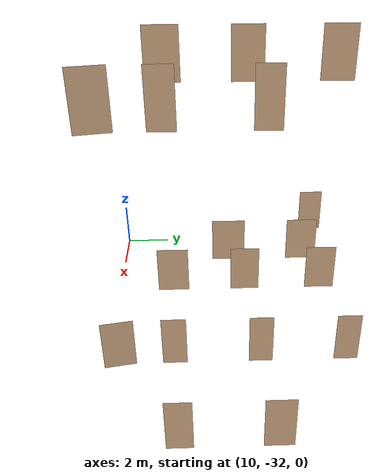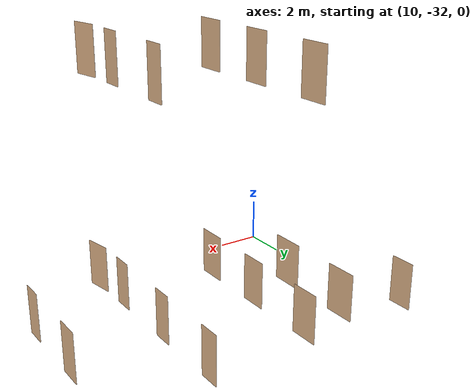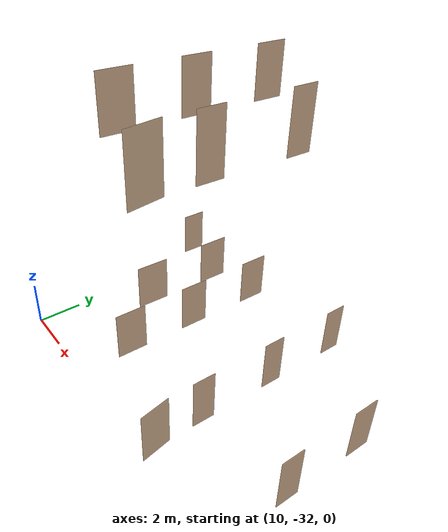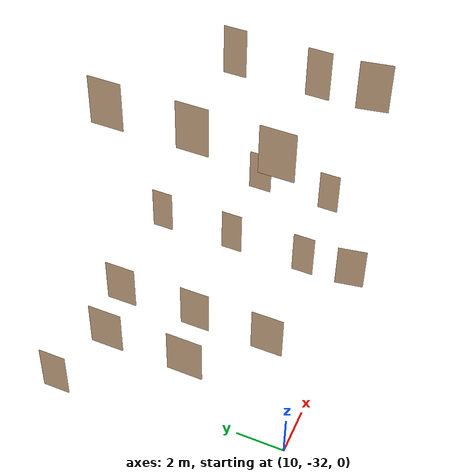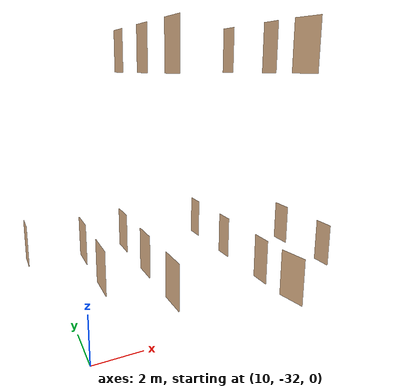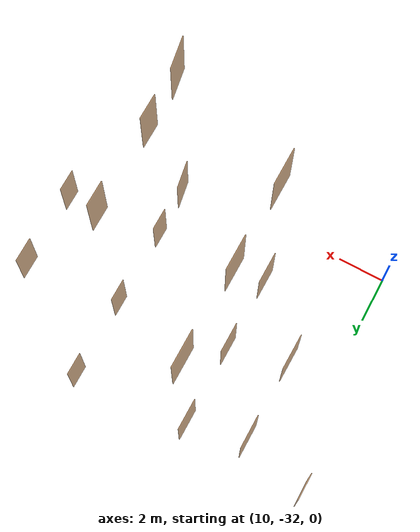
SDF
<sdf version="1.7">
 <world name="sim_world">
  <model name="L1_left_consult_rm_9_outer">
   <pose>14.307718933887172 -29.486527441252285 0.0 0 0 -1.5707963267948966</pose>
   <static>true</static>
   <link name="right">
    <pose>0 0 1.11 0 0 0</pose>
    <visual name="right_visual">
     <geometry><box><size>1.401791854159457 0.03 2.2</size></box></geometry>
     <material>
      <ambient>0.5 0.25 0 0.6</ambient>
      <diffuse>0.5 0.25 0 0.6</diffuse>
      <pbr><metal><metalness>0.0</metalness></metal></pbr>
     </material>
    </visual>
    <collision name="right_collision">
     <geometry><box><size>1.401791854159457 0.03 2.2</size></box></geometry>
     <surface><contact><collide_bitmask>0x02</collide_bitmask></contact></surface>
    </collision>
    <inertial>
     <mass>50.0</mass>
     <inertia><ixx>20.17041666666667</ixx><iyy>28.354251676615874</iyy><izz>8.191335009949201</izz></inertia>
    </inertial>
   </link>
   <joint name="right_joint" type="prismatic">
    <parent>world</parent>
    <child>right</child>
    <axis>
     <xyz>1 0 0</xyz>
     <limit><lower>0.0</lower><upper>1.411791854159457</upper><effort>500.0</effort></limit>
    </axis>
   </joint>
  </model>
  <model name="L1_left_consult_rm_10_outer">
   <pose>14.307718933887172 -26.181039190800377 0.0 0 0 -1.5707963267948966</pose>
   <static>true</static>
   <link name="right">
    <pose>0 0 1.11 0 0 0</pose>
    <visual name="right_visual">
     <geometry><box><size>1.2997034729433474 0.03 2.2</size></box></geometry>
     <material>
      <ambient>0.5 0.25 0 0.6</ambient>
      <diffuse>0.5 0.25 0 0.6</diffuse>
      <pbr><metal><metalness>0.0</metalness></metal></pbr>
     </material>
    </visual>
    <collision name="right_collision">
     <geometry><box><size>1.2997034729433474 0.03 2.2</size></box></geometry>
     <surface><contact><collide_bitmask>0x02</collide_bitmask></contact></surface>
    </collision>
    <inertial>
     <mass>50.0</mass>
     <inertia><ixx>20.17041666666667</ixx><iyy>27.205121323254165</iyy><izz>7.0422046565874945</izz></inertia>
    </inertial>
   </link>
   <joint name="right_joint" type="prismatic">
    <parent>world</parent>
    <child>right</child>
    <axis>
     <xyz>1 0 0</xyz>
     <limit><lower>0.0</lower><upper>1.3097034729433474</upper><effort>500.0</effort></limit>
    </axis>
   </joint>
  </model>
  <model name="L1_left_consult_rm_11_outer">
   <pose>14.307718933887172 -22.673729856544 0.0 0 0 -1.5707963267948966</pose>
   <static>true</static>
   <link name="right">
    <pose>0 0 1.11 0 0 0</pose>
    <visual name="right_visual">
     <geometry><box><size>1.346359370793431 0.03 2.2</size></box></geometry>
     <material>
      <ambient>0.5 0.25 0 0.6</ambient>
      <diffuse>0.5 0.25 0 0.6</diffuse>
      <pbr><metal><metalness>0.0</metalness></metal></pbr>
     </material>
    </visual>
    <collision name="right_collision">
     <geometry><box><size>1.346359370793431 0.03 2.2</size></box></geometry>
     <surface><contact><collide_bitmask>0x02</collide_bitmask></contact></surface>
    </collision>
    <inertial>
     <mass>50.0</mass>
     <inertia><ixx>20.17041666666667</ixx><iyy>27.719514813847017</iyy><izz>7.556598147180346</izz></inertia>
    </inertial>
   </link>
   <joint name="right_joint" type="prismatic">
    <parent>world</parent>
    <child>right</child>
    <axis>
     <xyz>1 0 0</xyz>
     <limit><lower>0.0</lower><upper>1.356359370793431</upper><effort>500.0</effort></limit>
    </axis>
   </joint>
  </model>
  <model name="L1_left_negative_air_pressure">
   <pose>11.837715857082431 -26.84586554363296 0.0 0 0 -1.5791183096276138</pose>
   <link name="right">
    <pose>0 0 1.11 0 0 0</pose>
    <visual name="right_visual">
     <geometry><box><size>1.5784285274029304 0.03 2.2</size></box></geometry>
     <material>
      <ambient>0.5 0.25 0 0.6</ambient>
      <diffuse>0.5 0.25 0 0.6</diffuse>
      <pbr><metal><metalness>0.0</metalness></metal></pbr>
     </material>
    </visual>
    <collision name="right_collision">
     <geometry><box><size>1.5784285274029304 0.03 2.2</size></box></geometry>
     <surface><contact><collide_bitmask>0x02</collide_bitmask></contact></surface>
    </collision>
    <inertial>
     <mass>50.0</mass>
     <inertia><ixx>20.17041666666667</ixx><iyy>30.547652567164103</iyy><izz>10.384735900497432</izz></inertia>
    </inertial>
   </link>
   <joint name="right_joint" type="prismatic">
    <parent>world</parent>
    <child>right</child>
    <axis>
     <xyz>1 0 0</xyz>
     <limit><lower>0.0</lower><upper>1.5884285274029304</upper><effort>500.0</effort></limit>
    </axis>
   </joint>
   <plugin name="door" filename="libdoor.so">
    <v_max_door>0.2</v_max_door>
    <a_max_door>0.2</a_max_door>
    <a_nom_door>0.08</a_nom_door>
    <dx_min_door>0.001</dx_min_door>
    <f_max_door>100.0</f_max_door>
    <door name="L1_left_negative_air_pressure" type="SlidingDoor" left_joint_name="empty_joint" right_joint_name="right_joint"/>
   </plugin>
  </model>
  <model name="L1_left_counsel_4">
   <pose>11.84769047344334 -23.23487942771434 0.0 0 0 -1.5707963267948966</pose>
   <static>true</static>
   <link name="right">
    <pose>0 0 1.11 0 0 0</pose>
    <visual name="right_visual">
     <geometry><box><size>1.465758624668284 0.03 2.2</size></box></geometry>
     <material>
      <ambient>0.5 0.25 0 0.6</ambient>
      <diffuse>0.5 0.25 0 0.6</diffuse>
      <pbr><metal><metalness>0.0</metalness></metal></pbr>
     </material>
    </visual>
    <collision name="right_collision">
     <geometry><box><size>1.465758624668284 0.03 2.2</size></box></geometry>
     <surface><contact><collide_bitmask>0x02</collide_bitmask></contact></surface>
    </collision>
    <inertial>
     <mass>50.0</mass>
     <inertia><ixx>20.17041666666667</ixx><iyy>29.118534774122757</iyy><izz>8.955618107456084</izz></inertia>
    </inertial>
   </link>
   <joint name="right_joint" type="prismatic">
    <parent>world</parent>
    <child>right</child>
    <axis>
     <xyz>1 0 0</xyz>
     <limit><lower>0.0</lower><upper>1.4757586246682841</upper><effort>500.0</effort></limit>
    </axis>
   </joint>
  </model>
  <model name="L1_left_counsel_3">
   <pose>9.016407061266882 -22.377170108841987 0.0 0 0 -1.5707963267948966</pose>
   <static>true</static>
   <link name="right">
    <pose>0 0 1.11 0 0 0</pose>
    <visual name="right_visual">
     <geometry><box><size>1.1436094765585965 0.03 2.2</size></box></geometry>
     <material>
      <ambient>0.5 0.25 0 0.6</ambient>
      <diffuse>0.5 0.25 0 0.6</diffuse>
      <pbr><metal><metalness>0.0</metalness></metal></pbr>
     </material>
    </visual>
    <collision name="right_collision">
     <geometry><box><size>1.1436094765585965 0.03 2.2</size></box></geometry>
     <surface><contact><collide_bitmask>0x02</collide_bitmask></contact></surface>
    </collision>
    <inertial>
     <mass>50.0</mass>
     <inertia><ixx>20.17041666666667</ixx><iyy>25.616010978644287</iyy><izz>5.453094311977613</izz></inertia>
    </inertial>
   </link>
   <joint name="right_joint" type="prismatic">
    <parent>world</parent>
    <child>right</child>
    <axis>
     <xyz>1 0 0</xyz>
     <limit><lower>0.0</lower><upper>1.1536094765585965</upper><effort>500.0</effort></limit>
    </axis>
   </joint>
  </model>
  <model name="L1_left_consult_rm_11_inner">
   <pose>19.167982000692298 -22.335117880081555 0.0 0 0 1.5707963267948966</pose>
   <static>true</static>
   <link name="right">
    <pose>0 0 1.11 0 0 0</pose>
    <visual name="right_visual">
     <geometry><box><size>0.960216530133456 0.03 2.2</size></box></geometry>
     <material>
      <ambient>0.5 0.25 0 0.6</ambient>
      <diffuse>0.5 0.25 0 0.6</diffuse>
      <pbr><metal><metalness>0.0</metalness></metal></pbr>
     </material>
    </visual>
    <collision name="right_collision">
     <geometry><box><size>0.960216530133456 0.03 2.2</size></box></geometry>
     <surface><contact><collide_bitmask>0x02</collide_bitmask></contact></surface>
    </collision>
    <inertial>
     <mass>50.0</mass>
     <inertia><ixx>20.17041666666667</ixx><iyy>24.00839910308973</iyy><izz>3.8454824364230595</izz></inertia>
    </inertial>
   </link>
   <joint name="right_joint" type="prismatic">
    <parent>world</parent>
    <child>right</child>
    <axis>
     <xyz>1 0 0</xyz>
     <limit><lower>0.0</lower><upper>0.970216530133456</upper><effort>500.0</effort></limit>
    </axis>
   </joint>
  </model>
  <model name="L1_left_consult_rm_10_inner">
   <pose>19.167982000692298 -25.7948963501404 0.0 0 0 1.5707963267948966</pose>
   <static>true</static>
   <link name="right">
    <pose>0 0 1.11 0 0 0</pose>
    <visual name="right_visual">
     <geometry><box><size>0.9495554017153205 0.03 2.2</size></box></geometry>
     <material>
      <ambient>0.5 0.25 0 0.6</ambient>
      <diffuse>0.5 0.25 0 0.6</diffuse>
      <pbr><metal><metalness>0.0</metalness></metal></pbr>
     </material>
    </visual>
    <collision name="right_collision">
     <geometry><box><size>0.9495554017153205 0.03 2.2</size></box></geometry>
     <surface><contact><collide_bitmask>0x02</collide_bitmask></contact></surface>
    </collision>
    <inertial>
     <mass>50.0</mass>
     <inertia><ixx>20.17041666666667</ixx><iyy>23.923564420528106</iyy><izz>3.760647753861432</izz></inertia>
    </inertial>
   </link>
   <joint name="right_joint" type="prismatic">
    <parent>world</parent>
    <child>right</child>
    <axis>
     <xyz>1 0 0</xyz>
     <limit><lower>0.0</lower><upper>0.9595554017153205</upper><effort>500.0</effort></limit>
    </axis>
   </joint>
  </model>
  <model name="L1_left_consult_rm_9_inner">
   <pose>19.167982000692298 -29.246678973885643 0.0 0 0 1.5707963267948966</pose>
   <static>true</static>
   <link name="right">
    <pose>0 0 1.11 0 0 0</pose>
    <visual name="right_visual">
     <geometry><box><size>0.9762082227606628 0.03 2.2</size></box></geometry>
     <material>
      <ambient>0.5 0.25 0 0.6</ambient>
      <diffuse>0.5 0.25 0 0.6</diffuse>
      <pbr><metal><metalness>0.0</metalness></metal></pbr>
     </material>
    </visual>
    <collision name="right_collision">
     <geometry><box><size>0.9762082227606628 0.03 2.2</size></box></geometry>
     <surface><contact><collide_bitmask>0x02</collide_bitmask></contact></surface>
    </collision>
    <inertial>
     <mass>50.0</mass>
     <inertia><ixx>20.17041666666667</ixx><iyy>24.13742705910639</iyy><izz>3.9745103924397163</izz></inertia>
    </inertial>
   </link>
   <joint name="right_joint" type="prismatic">
    <parent>world</parent>
    <child>right</child>
    <axis>
     <xyz>1 0 0</xyz>
     <limit><lower>0.0</lower><upper>0.9862082227606628</upper><effort>500.0</effort></limit>
    </axis>
   </joint>
  </model>
  <model name="L1_left_consult_rm_8_inner">
   <pose>19.279587323564495 -31.432062228375862 0.0 0 0 1.7466565776642482</pose>
   <static>true</static>
   <link name="right">
    <pose>0 0 1.11 0 0 0</pose>
    <visual name="right_visual">
     <geometry><box><size>1.2738178645197111 0.03 2.2</size></box></geometry>
     <material>
      <ambient>0.5 0.25 0 0.6</ambient>
      <diffuse>0.5 0.25 0 0.6</diffuse>
      <pbr><metal><metalness>0.0</metalness></metal></pbr>
     </material>
    </visual>
    <collision name="right_collision">
     <geometry><box><size>1.2738178645197111 0.03 2.2</size></box></geometry>
     <surface><contact><collide_bitmask>0x02</collide_bitmask></contact></surface>
    </collision>
    <inertial>
     <mass>50.0</mass>
     <inertia><ixx>20.17041666666667</ixx><iyy>26.927549799873162</iyy><izz>6.764633133206488</izz></inertia>
    </inertial>
   </link>
   <joint name="right_joint" type="revolute">
    <parent>world</parent>
    <child>right</child>
    <axis><xyz>0 0 -1</xyz><limit><lower>0</lower><upper>1.57</upper></limit></axis>
    <pose>0.6419089322598556 0 0 0 0 0</pose>
   </joint>
  </model>
  <model name="L1_left_consult_rm_5_inner">
   <pose>23.381523787546655 -28.936119764624465 0.0 0 0 -1.5707963267948966</pose>
   <static>true</static>
   <link name="right">
    <pose>0 0 1.11 0 0 0</pose>
    <visual name="right_visual">
     <geometry><box><size>0.9625587477404716 0.03 2.2</size></box></geometry>
     <material>
      <ambient>0.5 0.25 0 0.6</ambient>
      <diffuse>0.5 0.25 0 0.6</diffuse>
      <pbr><metal><metalness>0.0</metalness></metal></pbr>
     </material>
    </visual>
    <collision name="right_collision">
     <geometry><box><size>0.9625587477404716 0.03 2.2</size></box></geometry>
     <surface><contact><collide_bitmask>0x02</collide_bitmask></contact></surface>
    </collision>
    <inertial>
     <mass>50.0</mass>
     <inertia><ixx>20.17041666666667</ixx><iyy>24.027163928548777</iyy><izz>3.8642472618821038</izz></inertia>
    </inertial>
   </link>
   <joint name="right_joint" type="prismatic">
    <parent>world</parent>
    <child>right</child>
    <axis>
     <xyz>1 0 0</xyz>
     <limit><lower>0.0</lower><upper>0.9725587477404716</upper><effort>500.0</effort></limit>
    </axis>
   </joint>
  </model>
  <model name="L1_left_consult_rm_4_inner">
   <pose>23.381523787546655 -25.472760663051446 0.0 0 0 -1.5707963267948966</pose>
   <static>true</static>
   <link name="right">
    <pose>0 0 1.11 0 0 0</pose>
    <visual name="right_visual">
     <geometry><box><size>1.0858616976270115 0.03 2.2</size></box></geometry>
     <material>
      <ambient>0.5 0.25 0 0.6</ambient>
      <diffuse>0.5 0.25 0 0.6</diffuse>
      <pbr><metal><metalness>0.0</metalness></metal></pbr>
     </material>
    </visual>
    <collision name="right_collision">
     <geometry><box><size>1.0858616976270115 0.03 2.2</size></box></geometry>
     <surface><contact><collide_bitmask>0x02</collide_bitmask></contact></surface>
    </collision>
    <inertial>
     <mass>50.0</mass>
     <inertia><ixx>20.17041666666667</ixx><iyy>25.079565109889238</iyy><izz>4.916648443222564</izz></inertia>
    </inertial>
   </link>
   <joint name="right_joint" type="prismatic">
    <parent>world</parent>
    <child>right</child>
    <axis>
     <xyz>1 0 0</xyz>
     <limit><lower>0.0</lower><upper>1.0958616976270115</upper><effort>500.0</effort></limit>
    </axis>
   </joint>
  </model>
  <model name="L2_left_consult_rm_9_outer">
   <pose>14.307718933887172 -29.486527441252285 10.0 0 0 -1.5707963267948966</pose>
   <static>true</static>
   <link name="right">
    <pose>0 0 1.11 0 0 0</pose>
    <visual name="right_visual">
     <geometry><box><size>1.401791854159457 0.03 2.2</size></box></geometry>
     <material>
      <ambient>0.5 0.25 0 0.6</ambient>
      <diffuse>0.5 0.25 0 0.6</diffuse>
      <pbr><metal><metalness>0.0</metalness></metal></pbr>
     </material>
    </visual>
    <collision name="right_collision">
     <geometry><box><size>1.401791854159457 0.03 2.2</size></box></geometry>
     <surface><contact><collide_bitmask>0x02</collide_bitmask></contact></surface>
    </collision>
    <inertial>
     <mass>50.0</mass>
     <inertia><ixx>20.17041666666667</ixx><iyy>28.354251676615874</iyy><izz>8.191335009949201</izz></inertia>
    </inertial>
   </link>
   <joint name="right_joint" type="prismatic">
    <parent>world</parent>
    <child>right</child>
    <axis>
     <xyz>1 0 0</xyz>
     <limit><lower>0.0</lower><upper>1.411791854159457</upper><effort>500.0</effort></limit>
    </axis>
   </joint>
  </model>
  <model name="L2_left_consult_rm_10_outer">
   <pose>14.307718933887172 -26.181039190800377 10.0 0 0 -1.5707963267948966</pose>
   <static>true</static>
   <link name="right">
    <pose>0 0 1.11 0 0 0</pose>
    <visual name="right_visual">
     <geometry><box><size>1.2997034729433474 0.03 2.2</size></box></geometry>
     <material>
      <ambient>0.5 0.25 0 0.6</ambient>
      <diffuse>0.5 0.25 0 0.6</diffuse>
      <pbr><metal><metalness>0.0</metalness></metal></pbr>
     </material>
    </visual>
    <collision name="right_collision">
     <geometry><box><size>1.2997034729433474 0.03 2.2</size></box></geometry>
     <surface><contact><collide_bitmask>0x02</collide_bitmask></contact></surface>
    </collision>
    <inertial>
     <mass>50.0</mass>
     <inertia><ixx>20.17041666666667</ixx><iyy>27.205121323254165</iyy><izz>7.0422046565874945</izz></inertia>
    </inertial>
   </link>
   <joint name="right_joint" type="prismatic">
    <parent>world</parent>
    <child>right</child>
    <axis>
     <xyz>1 0 0</xyz>
     <limit><lower>0.0</lower><upper>1.3097034729433474</upper><effort>500.0</effort></limit>
    </axis>
   </joint>
  </model>
  <model name="L2_left_consult_rm_11_outer">
   <pose>14.307718933887172 -22.673729856544 10.0 0 0 -1.5707963267948966</pose>
   <static>true</static>
   <link name="right">
    <pose>0 0 1.11 0 0 0</pose>
    <visual name="right_visual">
     <geometry><box><size>1.346359370793431 0.03 2.2</size></box></geometry>
     <material>
      <ambient>0.5 0.25 0 0.6</ambient>
      <diffuse>0.5 0.25 0 0.6</diffuse>
      <pbr><metal><metalness>0.0</metalness></metal></pbr>
     </material>
    </visual>
    <collision name="right_collision">
     <geometry><box><size>1.346359370793431 0.03 2.2</size></box></geometry>
     <surface><contact><collide_bitmask>0x02</collide_bitmask></contact></surface>
    </collision>
    <inertial>
     <mass>50.0</mass>
     <inertia><ixx>20.17041666666667</ixx><iyy>27.719514813847017</iyy><izz>7.556598147180346</izz></inertia>
    </inertial>
   </link>
   <joint name="right_joint" type="prismatic">
    <parent>world</parent>
    <child>right</child>
    <axis>
     <xyz>1 0 0</xyz>
     <limit><lower>0.0</lower><upper>1.356359370793431</upper><effort>500.0</effort></limit>
    </axis>
   </joint>
  </model>
  <model name="L2_left_consult_rm_10_inner">
   <pose>19.167982000692298 -25.7948963501404 10.0 0 0 1.5707963267948966</pose>
   <static>true</static>
   <link name="right">
    <pose>0 0 1.11 0 0 0</pose>
    <visual name="right_visual">
     <geometry><box><size>0.9495554017153205 0.03 2.2</size></box></geometry>
     <material>
      <ambient>0.5 0.25 0 0.6</ambient>
      <diffuse>0.5 0.25 0 0.6</diffuse>
      <pbr><metal><metalness>0.0</metalness></metal></pbr>
     </material>
    </visual>
    <collision name="right_collision">
     <geometry><box><size>0.9495554017153205 0.03 2.2</size></box></geometry>
     <surface><contact><collide_bitmask>0x02</collide_bitmask></contact></surface>
    </collision>
    <inertial>
     <mass>50.0</mass>
     <inertia><ixx>20.17041666666667</ixx><iyy>23.923564420528106</iyy><izz>3.760647753861432</izz></inertia>
    </inertial>
   </link>
   <joint name="right_joint" type="prismatic">
    <parent>world</parent>
    <child>right</child>
    <axis>
     <xyz>1 0 0</xyz>
     <limit><lower>0.0</lower><upper>0.9595554017153205</upper><effort>500.0</effort></limit>
    </axis>
   </joint>
  </model>
  <model name="L2_left_consult_rm_9_inner">
   <pose>19.167982000692298 -29.246678973885643 10.0 0 0 1.5707963267948966</pose>
   <static>true</static>
   <link name="right">
    <pose>0 0 1.11 0 0 0</pose>
    <visual name="right_visual">
     <geometry><box><size>0.9762082227606628 0.03 2.2</size></box></geometry>
     <material>
      <ambient>0.5 0.25 0 0.6</ambient>
      <diffuse>0.5 0.25 0 0.6</diffuse>
      <pbr><metal><metalness>0.0</metalness></metal></pbr>
     </material>
    </visual>
    <collision name="right_collision">
     <geometry><box><size>0.9762082227606628 0.03 2.2</size></box></geometry>
     <surface><contact><collide_bitmask>0x02</collide_bitmask></contact></surface>
    </collision>
    <inertial>
     <mass>50.0</mass>
     <inertia><ixx>20.17041666666667</ixx><iyy>24.13742705910639</iyy><izz>3.9745103924397163</izz></inertia>
    </inertial>
   </link>
   <joint name="right_joint" type="prismatic">
    <parent>world</parent>
    <child>right</child>
    <axis>
     <xyz>1 0 0</xyz>
     <limit><lower>0.0</lower><upper>0.9862082227606628</upper><effort>500.0</effort></limit>
    </axis>
   </joint>
  </model>
  <model name="L2_left_consult_rm_8_inner">
   <pose>19.279587323564495 -31.432062228375862 10.0 0 0 1.7466565776642482</pose>
   <static>true</static>
   <link name="right">
    <pose>0 0 1.11 0 0 0</pose>
    <visual name="right_visual">
     <geometry><box><size>1.2738178645197111 0.03 2.2</size></box></geometry>
     <material>
      <ambient>0.5 0.25 0 0.6</ambient>
      <diffuse>0.5 0.25 0 0.6</diffuse>
      <pbr><metal><metalness>0.0</metalness></metal></pbr>
     </material>
    </visual>
    <collision name="right_collision">
     <geometry><box><size>1.2738178645197111 0.03 2.2</size></box></geometry>
     <surface><contact><collide_bitmask>0x02</collide_bitmask></contact></surface>
    </collision>
    <inertial>
     <mass>50.0</mass>
     <inertia><ixx>20.17041666666667</ixx><iyy>26.927549799873162</iyy><izz>6.764633133206488</izz></inertia>
    </inertial>
   </link>
   <joint name="right_joint" type="revolute">
    <parent>world</parent>
    <child>right</child>
    <axis><xyz>0 0 -1</xyz><limit><lower>0</lower><upper>1.57</upper></limit></axis>
    <pose>0.6419089322598556 0 0 0 0 0</pose>
   </joint>
  </model>
 </world>
</sdf>
